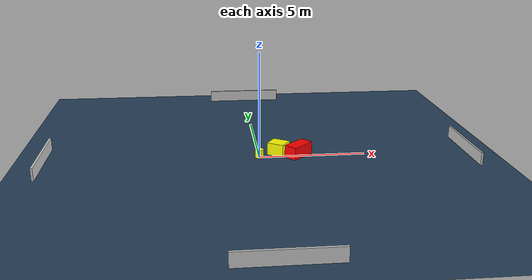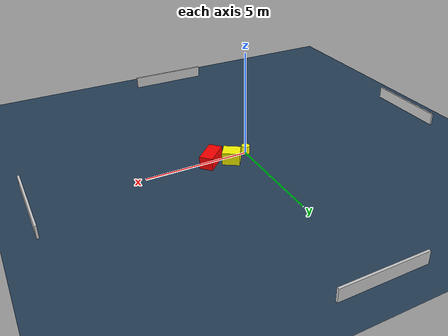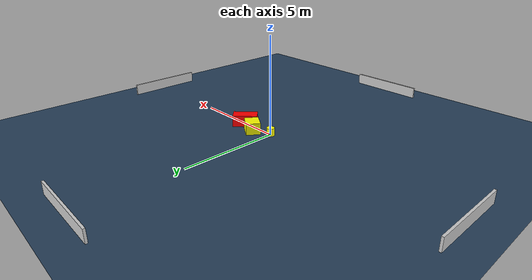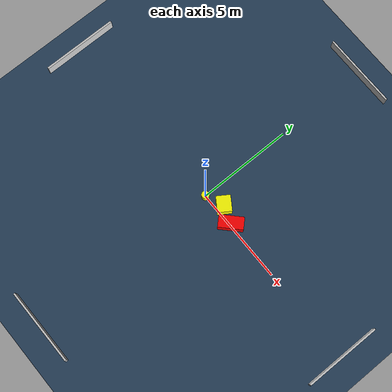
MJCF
<?xml version="1.0" ?>
<mujoco model="generated_environment">
  <option timestep="0.01" integrator="RK4" cone="elliptic"/>
  <default>
    <geom density="1"/>
  </default>
  <asset>
    <texture builtin="gradient" height="3072" name="skybox" rgb1="0.3 0.5 0.7" rgb2="0 0 0" type="skybox" width="512"/>
    <texture builtin="checker" height="300" name="groundplane" rgb1="0.2 0.3 0.4" rgb2="0.1 0.2 0.3" type="2d" width="300"/>
    <material name="groundplane" reflectance="0.2" texrepeat="5 5" texture="groundplane"/>
  </asset>
  <worldbody>
    <light dir="0 0 -1" directional="true" pos="0 0 1.5"/>
    <geom condim="3" friction="0.5 0.005 0.001" material="groundplane" name="floor" pos="0 0 0" size="0 0 0.05" type="plane"/>
    <body name="walls">
      <geom name="wall_1" condim="4" pos="-10.0 0.0 0.3" rgba="0.800000011920929 0.800000011920929 0.800000011920929 1.0" size="0.05 2.0 0.3" type="box"/>
      <geom name="wall_2" condim="4" pos="10.0 0.0 0.3" rgba="0.800000011920929 0.800000011920929 0.800000011920929 1.0" size="0.05 2.0 0.3" type="box"/>
      <geom name="wall_3" condim="4" pos="0.0 -10.0 0.3" rgba="0.800000011920929 0.800000011920929 0.800000011920929 1.0" size="2.0 0.05 0.3" type="box"/>
      <geom name="wall_4" condim="4" pos="0.0 10.0 0.3" rgba="0.800000011920929 0.800000011920929 0.800000011920929 1.0" size="2.0 0.05 0.3" type="box"/>
    </body>
    <body name="robot">
      <joint name="joint_x" type="slide" pos="0 0 0" axis="1 0 0"/>
      <joint name="joint_y" type="slide" pos="0 0 0" axis="0 1 0"/>
      <geom name="robot" type="cylinder" pos="0.0 0.0 0.2" size="0.2 0.2 0.0" mass="5.0" friction="1.0 0.005 0.0001" condim="4" rgba="1.0 1.0 0.0 1.0"/>
    </body>
    <body name="obstacle_1_movable">
      <geom name="obstacle_1_movable" condim="4" pos="0.9407772792084945 0.385267868972635 0.3" euler="0 0 146.6857983675528" friction="0.0 0.005 0.001" rgba="1.0 1.0 0.0 1.0" size="0.4105838426400536 0.36418531774230284 0.3" type="box" mass="0.1"/>
      <joint type="free"/>
    </body>
    <body name="obstacle_2_static">
      <geom name="obstacle_2_static" condim="4" pos="1.8551151851970311 0.07073303094409437 0.3" euler="0 0 43.959612889226506" friction="0.0 0.005 0.001" rgba="1.0 0.0 0.0 1.0" size="0.6298246998449664 0.3171080887830298 0.3" type="box"/>
    </body>
  </worldbody>
  <actuator>
    <motor name="actuator_x" joint="joint_x" gear="1" ctrlrange="-1 1"/>
    <motor name="actuator_y" joint="joint_y" gear="1" ctrlrange="-1 1"/>
  </actuator>
</mujoco>
